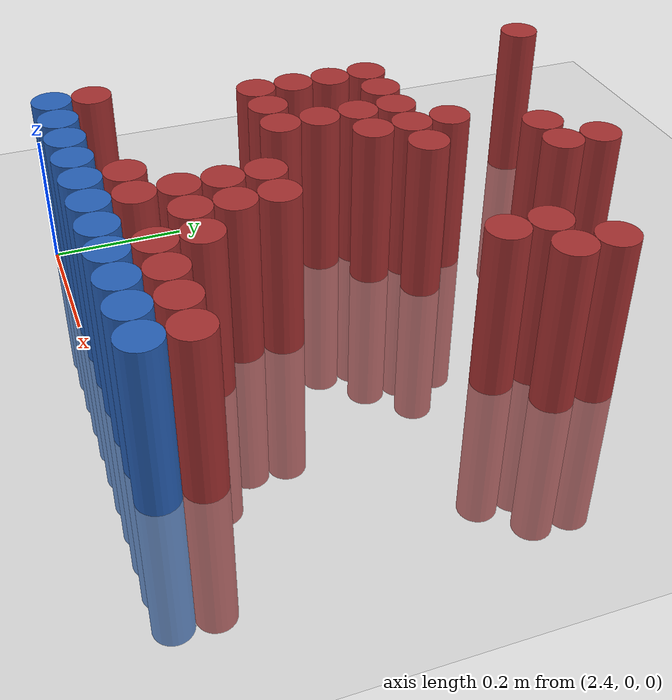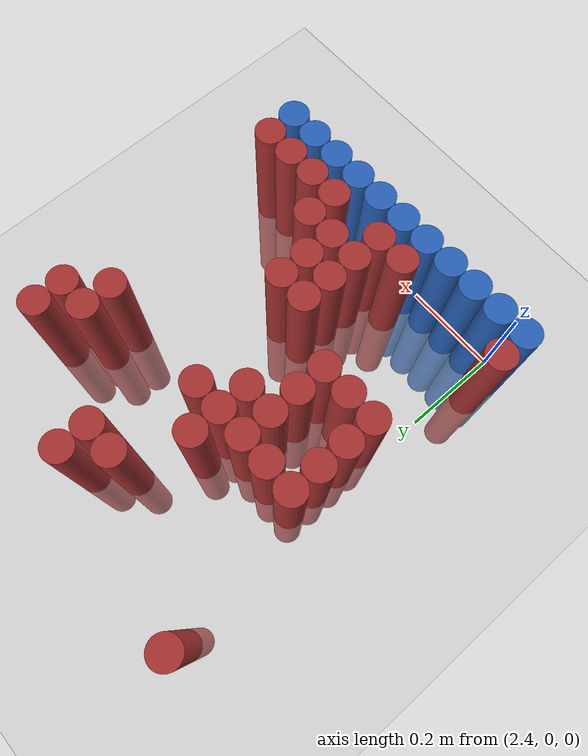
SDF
<sdf version="1.6">
 <world name="default">
  <model name="ground_plane">
   <static>1</static>
   <link name="link">
    <collision name="collision">
     <geometry><plane><normal>0 0 1</normal><size>100 100</size></plane></geometry>
     <surface><friction><ode><mu>100</mu><mu2>50</mu2></ode></friction></surface>
    </collision>
    <visual name="visual">
     <cast_shadows>0</cast_shadows>
     <geometry><plane><normal>0 0 1</normal><size>100 100</size></plane></geometry>
     <material>
      <script><uri>file://media/materials/scripts/gazebo.material</uri><name>Gazebo/Grey</name></script>
     </material>
    </visual>
   </link>
  </model>
  <model name="unit_cylinder_229">
   <static>1</static>
   <pose>2.370000 0.810000 0.000000 0.000000 0.000000 0.000000</pose>
   <link name="link">
    <inertial>
     <mass>1</mass>
     <inertia><ixx>0.145833</ixx><ixy>0</ixy><ixz>0</ixz><iyy>0.145833</iyy><iyz>0</iyz><izz>0.125</izz></inertia>
    </inertial>
    <collision name="collision">
     <geometry><cylinder><radius>0.030000</radius><length>0.5</length></cylinder></geometry>
    </collision>
    <visual name="visual">
     <geometry><cylinder><radius>0.030000</radius><length>0.5</length></cylinder></geometry>
     <material>
      <ambient>0.648000 0.192000 0.192000 1</ambient>
      <diffuse>0.648000 0.192000 0.192000 1</diffuse>
     </material>
     <material>
      <script><name>Gazebo/Grey</name><uri>file://media/materials/scripts/gazebo.material</uri></script>
     </material>
    </visual>
   </link>
  </model>
  <model name="unit_cylinder_234">
   <static>1</static>
   <pose>2.730000 0.750000 0.000000 0.000000 0.000000 0.000000</pose>
   <link name="link">
    <inertial>
     <mass>1</mass>
     <inertia><ixx>0.145833</ixx><ixy>0</ixy><ixz>0</ixz><iyy>0.145833</iyy><iyz>0</iyz><izz>0.125</izz></inertia>
    </inertial>
    <collision name="collision">
     <geometry><cylinder><radius>0.030000</radius><length>0.5</length></cylinder></geometry>
    </collision>
    <visual name="visual">
     <geometry><cylinder><radius>0.030000</radius><length>0.5</length></cylinder></geometry>
     <material>
      <ambient>0.648000 0.192000 0.192000 1</ambient>
      <diffuse>0.648000 0.192000 0.192000 1</diffuse>
     </material>
     <material>
      <script><name>Gazebo/Grey</name><uri>file://media/materials/scripts/gazebo.material</uri></script>
     </material>
    </visual>
   </link>
  </model>
  <model name="unit_cylinder_237">
   <static>1</static>
   <pose>2.670000 0.690000 0.000000 0.000000 0.000000 0.000000</pose>
   <link name="link">
    <inertial>
     <mass>1</mass>
     <inertia><ixx>0.145833</ixx><ixy>0</ixy><ixz>0</ixz><iyy>0.145833</iyy><iyz>0</iyz><izz>0.125</izz></inertia>
    </inertial>
    <collision name="collision">
     <geometry><cylinder><radius>0.030000</radius><length>0.5</length></cylinder></geometry>
    </collision>
    <visual name="visual">
     <geometry><cylinder><radius>0.030000</radius><length>0.5</length></cylinder></geometry>
     <material>
      <ambient>0.648000 0.192000 0.192000 1</ambient>
      <diffuse>0.648000 0.192000 0.192000 1</diffuse>
     </material>
     <material>
      <script><name>Gazebo/Grey</name><uri>file://media/materials/scripts/gazebo.material</uri></script>
     </material>
    </visual>
   </link>
  </model>
  <model name="unit_cylinder_238">
   <static>1</static>
   <pose>2.730000 0.690000 0.000000 0.000000 0.000000 0.000000</pose>
   <link name="link">
    <inertial>
     <mass>1</mass>
     <inertia><ixx>0.145833</ixx><ixy>0</ixy><ixz>0</ixz><iyy>0.145833</iyy><iyz>0</iyz><izz>0.125</izz></inertia>
    </inertial>
    <collision name="collision">
     <geometry><cylinder><radius>0.030000</radius><length>0.5</length></cylinder></geometry>
    </collision>
    <visual name="visual">
     <geometry><cylinder><radius>0.030000</radius><length>0.5</length></cylinder></geometry>
     <material>
      <ambient>0.648000 0.192000 0.192000 1</ambient>
      <diffuse>0.648000 0.192000 0.192000 1</diffuse>
     </material>
     <material>
      <script><name>Gazebo/Grey</name><uri>file://media/materials/scripts/gazebo.material</uri></script>
     </material>
    </visual>
   </link>
  </model>
  <model name="unit_cylinder_241">
   <static>1</static>
   <pose>2.970000 0.630000 0.000000 0.000000 0.000000 0.000000</pose>
   <link name="link">
    <inertial>
     <mass>1</mass>
     <inertia><ixx>0.145833</ixx><ixy>0</ixy><ixz>0</ixz><iyy>0.145833</iyy><iyz>0</iyz><izz>0.125</izz></inertia>
    </inertial>
    <collision name="collision">
     <geometry><cylinder><radius>0.030000</radius><length>0.5</length></cylinder></geometry>
    </collision>
    <visual name="visual">
     <geometry><cylinder><radius>0.030000</radius><length>0.5</length></cylinder></geometry>
     <material>
      <ambient>0.648000 0.192000 0.192000 1</ambient>
      <diffuse>0.648000 0.192000 0.192000 1</diffuse>
     </material>
     <material>
      <script><name>Gazebo/Grey</name><uri>file://media/materials/scripts/gazebo.material</uri></script>
     </material>
    </visual>
   </link>
  </model>
  <model name="unit_cylinder_245">
   <static>1</static>
   <pose>2.610000 0.570000 0.000000 0.000000 0.000000 0.000000</pose>
   <link name="link">
    <inertial>
     <mass>1</mass>
     <inertia><ixx>0.145833</ixx><ixy>0</ixy><ixz>0</ixz><iyy>0.145833</iyy><iyz>0</iyz><izz>0.125</izz></inertia>
    </inertial>
    <collision name="collision">
     <geometry><cylinder><radius>0.030000</radius><length>0.5</length></cylinder></geometry>
    </collision>
    <visual name="visual">
     <geometry><cylinder><radius>0.030000</radius><length>0.5</length></cylinder></geometry>
     <material>
      <ambient>0.648000 0.192000 0.192000 1</ambient>
      <diffuse>0.648000 0.192000 0.192000 1</diffuse>
     </material>
     <material>
      <script><name>Gazebo/Grey</name><uri>file://media/materials/scripts/gazebo.material</uri></script>
     </material>
    </visual>
   </link>
  </model>
  <model name="unit_cylinder_246">
   <static>1</static>
   <pose>2.910000 0.570000 0.000000 0.000000 0.000000 0.000000</pose>
   <link name="link">
    <inertial>
     <mass>1</mass>
     <inertia><ixx>0.145833</ixx><ixy>0</ixy><ixz>0</ixz><iyy>0.145833</iyy><iyz>0</iyz><izz>0.125</izz></inertia>
    </inertial>
    <collision name="collision">
     <geometry><cylinder><radius>0.030000</radius><length>0.5</length></cylinder></geometry>
    </collision>
    <visual name="visual">
     <geometry><cylinder><radius>0.030000</radius><length>0.5</length></cylinder></geometry>
     <material>
      <ambient>0.648000 0.192000 0.192000 1</ambient>
      <diffuse>0.648000 0.192000 0.192000 1</diffuse>
     </material>
     <material>
      <script><name>Gazebo/Grey</name><uri>file://media/materials/scripts/gazebo.material</uri></script>
     </material>
    </visual>
   </link>
  </model>
  <model name="unit_cylinder_247">
   <static>1</static>
   <pose>2.970000 0.570000 0.000000 0.000000 0.000000 0.000000</pose>
   <link name="link">
    <inertial>
     <mass>1</mass>
     <inertia><ixx>0.145833</ixx><ixy>0</ixy><ixz>0</ixz><iyy>0.145833</iyy><iyz>0</iyz><izz>0.125</izz></inertia>
    </inertial>
    <collision name="collision">
     <geometry><cylinder><radius>0.030000</radius><length>0.5</length></cylinder></geometry>
    </collision>
    <visual name="visual">
     <geometry><cylinder><radius>0.030000</radius><length>0.5</length></cylinder></geometry>
     <material>
      <ambient>0.648000 0.192000 0.192000 1</ambient>
      <diffuse>0.648000 0.192000 0.192000 1</diffuse>
     </material>
     <material>
      <script><name>Gazebo/Grey</name><uri>file://media/materials/scripts/gazebo.material</uri></script>
     </material>
    </visual>
   </link>
  </model>
  <model name="unit_cylinder_248">
   <static>1</static>
   <pose>2.430000 0.510000 0.000000 0.000000 0.000000 0.000000</pose>
   <link name="link">
    <inertial>
     <mass>1</mass>
     <inertia><ixx>0.145833</ixx><ixy>0</ixy><ixz>0</ixz><iyy>0.145833</iyy><iyz>0</iyz><izz>0.125</izz></inertia>
    </inertial>
    <collision name="collision">
     <geometry><cylinder><radius>0.030000</radius><length>0.5</length></cylinder></geometry>
    </collision>
    <visual name="visual">
     <geometry><cylinder><radius>0.030000</radius><length>0.5</length></cylinder></geometry>
     <material>
      <ambient>0.648000 0.192000 0.192000 1</ambient>
      <diffuse>0.648000 0.192000 0.192000 1</diffuse>
     </material>
     <material>
      <script><name>Gazebo/Grey</name><uri>file://media/materials/scripts/gazebo.material</uri></script>
     </material>
    </visual>
   </link>
  </model>
  <model name="unit_cylinder_249">
   <static>1</static>
   <pose>2.490000 0.510000 0.000000 0.000000 0.000000 0.000000</pose>
   <link name="link">
    <inertial>
     <mass>1</mass>
     <inertia><ixx>0.145833</ixx><ixy>0</ixy><ixz>0</ixz><iyy>0.145833</iyy><iyz>0</iyz><izz>0.125</izz></inertia>
    </inertial>
    <collision name="collision">
     <geometry><cylinder><radius>0.030000</radius><length>0.5</length></cylinder></geometry>
    </collision>
    <visual name="visual">
     <geometry><cylinder><radius>0.030000</radius><length>0.5</length></cylinder></geometry>
     <material>
      <ambient>0.648000 0.192000 0.192000 1</ambient>
      <diffuse>0.648000 0.192000 0.192000 1</diffuse>
     </material>
     <material>
      <script><name>Gazebo/Grey</name><uri>file://media/materials/scripts/gazebo.material</uri></script>
     </material>
    </visual>
   </link>
  </model>
  <model name="unit_cylinder_250">
   <static>1</static>
   <pose>2.550000 0.510000 0.000000 0.000000 0.000000 0.000000</pose>
   <link name="link">
    <inertial>
     <mass>1</mass>
     <inertia><ixx>0.145833</ixx><ixy>0</ixy><ixz>0</ixz><iyy>0.145833</iyy><iyz>0</iyz><izz>0.125</izz></inertia>
    </inertial>
    <collision name="collision">
     <geometry><cylinder><radius>0.030000</radius><length>0.5</length></cylinder></geometry>
    </collision>
    <visual name="visual">
     <geometry><cylinder><radius>0.030000</radius><length>0.5</length></cylinder></geometry>
     <material>
      <ambient>0.648000 0.192000 0.192000 1</ambient>
      <diffuse>0.648000 0.192000 0.192000 1</diffuse>
     </material>
     <material>
      <script><name>Gazebo/Grey</name><uri>file://media/materials/scripts/gazebo.material</uri></script>
     </material>
    </visual>
   </link>
  </model>
  <model name="unit_cylinder_251">
   <static>1</static>
   <pose>2.610000 0.510000 0.000000 0.000000 0.000000 0.000000</pose>
   <link name="link">
    <inertial>
     <mass>1</mass>
     <inertia><ixx>0.145833</ixx><ixy>0</ixy><ixz>0</ixz><iyy>0.145833</iyy><iyz>0</iyz><izz>0.125</izz></inertia>
    </inertial>
    <collision name="collision">
     <geometry><cylinder><radius>0.030000</radius><length>0.5</length></cylinder></geometry>
    </collision>
    <visual name="visual">
     <geometry><cylinder><radius>0.030000</radius><length>0.5</length></cylinder></geometry>
     <material>
      <ambient>0.648000 0.192000 0.192000 1</ambient>
      <diffuse>0.648000 0.192000 0.192000 1</diffuse>
     </material>
     <material>
      <script><name>Gazebo/Grey</name><uri>file://media/materials/scripts/gazebo.material</uri></script>
     </material>
    </visual>
   </link>
  </model>
  <model name="unit_cylinder_252">
   <static>1</static>
   <pose>2.670000 0.510000 0.000000 0.000000 0.000000 0.000000</pose>
   <link name="link">
    <inertial>
     <mass>1</mass>
     <inertia><ixx>0.145833</ixx><ixy>0</ixy><ixz>0</ixz><iyy>0.145833</iyy><iyz>0</iyz><izz>0.125</izz></inertia>
    </inertial>
    <collision name="collision">
     <geometry><cylinder><radius>0.030000</radius><length>0.5</length></cylinder></geometry>
    </collision>
    <visual name="visual">
     <geometry><cylinder><radius>0.030000</radius><length>0.5</length></cylinder></geometry>
     <material>
      <ambient>0.648000 0.192000 0.192000 1</ambient>
      <diffuse>0.648000 0.192000 0.192000 1</diffuse>
     </material>
     <material>
      <script><name>Gazebo/Grey</name><uri>file://media/materials/scripts/gazebo.material</uri></script>
     </material>
    </visual>
   </link>
  </model>
  <model name="unit_cylinder_253">
   <static>1</static>
   <pose>2.910000 0.510000 0.000000 0.000000 0.000000 0.000000</pose>
   <link name="link">
    <inertial>
     <mass>1</mass>
     <inertia><ixx>0.145833</ixx><ixy>0</ixy><ixz>0</ixz><iyy>0.145833</iyy><iyz>0</iyz><izz>0.125</izz></inertia>
    </inertial>
    <collision name="collision">
     <geometry><cylinder><radius>0.030000</radius><length>0.5</length></cylinder></geometry>
    </collision>
    <visual name="visual">
     <geometry><cylinder><radius>0.030000</radius><length>0.5</length></cylinder></geometry>
     <material>
      <ambient>0.648000 0.192000 0.192000 1</ambient>
      <diffuse>0.648000 0.192000 0.192000 1</diffuse>
     </material>
     <material>
      <script><name>Gazebo/Grey</name><uri>file://media/materials/scripts/gazebo.material</uri></script>
     </material>
    </visual>
   </link>
  </model>
  <model name="unit_cylinder_255">
   <static>1</static>
   <pose>2.430000 0.450000 0.000000 0.000000 0.000000 0.000000</pose>
   <link name="link">
    <inertial>
     <mass>1</mass>
     <inertia><ixx>0.145833</ixx><ixy>0</ixy><ixz>0</ixz><iyy>0.145833</iyy><iyz>0</iyz><izz>0.125</izz></inertia>
    </inertial>
    <collision name="collision">
     <geometry><cylinder><radius>0.030000</radius><length>0.5</length></cylinder></geometry>
    </collision>
    <visual name="visual">
     <geometry><cylinder><radius>0.030000</radius><length>0.5</length></cylinder></geometry>
     <material>
      <ambient>0.648000 0.192000 0.192000 1</ambient>
      <diffuse>0.648000 0.192000 0.192000 1</diffuse>
     </material>
     <material>
      <script><name>Gazebo/Grey</name><uri>file://media/materials/scripts/gazebo.material</uri></script>
     </material>
    </visual>
   </link>
  </model>
  <model name="unit_cylinder_256">
   <static>1</static>
   <pose>2.550000 0.450000 0.000000 0.000000 0.000000 0.000000</pose>
   <link name="link">
    <inertial>
     <mass>1</mass>
     <inertia><ixx>0.145833</ixx><ixy>0</ixy><ixz>0</ixz><iyy>0.145833</iyy><iyz>0</iyz><izz>0.125</izz></inertia>
    </inertial>
    <collision name="collision">
     <geometry><cylinder><radius>0.030000</radius><length>0.5</length></cylinder></geometry>
    </collision>
    <visual name="visual">
     <geometry><cylinder><radius>0.030000</radius><length>0.5</length></cylinder></geometry>
     <material>
      <ambient>0.648000 0.192000 0.192000 1</ambient>
      <diffuse>0.648000 0.192000 0.192000 1</diffuse>
     </material>
     <material>
      <script><name>Gazebo/Grey</name><uri>file://media/materials/scripts/gazebo.material</uri></script>
     </material>
    </visual>
   </link>
  </model>
  <model name="unit_cylinder_257">
   <static>1</static>
   <pose>2.610000 0.450000 0.000000 0.000000 0.000000 0.000000</pose>
   <link name="link">
    <inertial>
     <mass>1</mass>
     <inertia><ixx>0.145833</ixx><ixy>0</ixy><ixz>0</ixz><iyy>0.145833</iyy><iyz>0</iyz><izz>0.125</izz></inertia>
    </inertial>
    <collision name="collision">
     <geometry><cylinder><radius>0.030000</radius><length>0.5</length></cylinder></geometry>
    </collision>
    <visual name="visual">
     <geometry><cylinder><radius>0.030000</radius><length>0.5</length></cylinder></geometry>
     <material>
      <ambient>0.648000 0.192000 0.192000 1</ambient>
      <diffuse>0.648000 0.192000 0.192000 1</diffuse>
     </material>
     <material>
      <script><name>Gazebo/Grey</name><uri>file://media/materials/scripts/gazebo.material</uri></script>
     </material>
    </visual>
   </link>
  </model>
  <model name="unit_cylinder_260">
   <static>1</static>
   <pose>2.430000 0.390000 0.000000 0.000000 0.000000 0.000000</pose>
   <link name="link">
    <inertial>
     <mass>1</mass>
     <inertia><ixx>0.145833</ixx><ixy>0</ixy><ixz>0</ixz><iyy>0.145833</iyy><iyz>0</iyz><izz>0.125</izz></inertia>
    </inertial>
    <collision name="collision">
     <geometry><cylinder><radius>0.030000</radius><length>0.5</length></cylinder></geometry>
    </collision>
    <visual name="visual">
     <geometry><cylinder><radius>0.030000</radius><length>0.5</length></cylinder></geometry>
     <material>
      <ambient>0.648000 0.192000 0.192000 1</ambient>
      <diffuse>0.648000 0.192000 0.192000 1</diffuse>
     </material>
     <material>
      <script><name>Gazebo/Grey</name><uri>file://media/materials/scripts/gazebo.material</uri></script>
     </material>
    </visual>
   </link>
  </model>
  <model name="unit_cylinder_261">
   <static>1</static>
   <pose>2.550000 0.390000 0.000000 0.000000 0.000000 0.000000</pose>
   <link name="link">
    <inertial>
     <mass>1</mass>
     <inertia><ixx>0.145833</ixx><ixy>0</ixy><ixz>0</ixz><iyy>0.145833</iyy><iyz>0</iyz><izz>0.125</izz></inertia>
    </inertial>
    <collision name="collision">
     <geometry><cylinder><radius>0.030000</radius><length>0.5</length></cylinder></geometry>
    </collision>
    <visual name="visual">
     <geometry><cylinder><radius>0.030000</radius><length>0.5</length></cylinder></geometry>
     <material>
      <ambient>0.648000 0.192000 0.192000 1</ambient>
      <diffuse>0.648000 0.192000 0.192000 1</diffuse>
     </material>
     <material>
      <script><name>Gazebo/Grey</name><uri>file://media/materials/scripts/gazebo.material</uri></script>
     </material>
    </visual>
   </link>
  </model>
  <model name="unit_cylinder_263">
   <static>1</static>
   <pose>2.430000 0.330000 0.000000 0.000000 0.000000 0.000000</pose>
   <link name="link">
    <inertial>
     <mass>1</mass>
     <inertia><ixx>0.145833</ixx><ixy>0</ixy><ixz>0</ixz><iyy>0.145833</iyy><iyz>0</iyz><izz>0.125</izz></inertia>
    </inertial>
    <collision name="collision">
     <geometry><cylinder><radius>0.030000</radius><length>0.5</length></cylinder></geometry>
    </collision>
    <visual name="visual">
     <geometry><cylinder><radius>0.030000</radius><length>0.5</length></cylinder></geometry>
     <material>
      <ambient>0.648000 0.192000 0.192000 1</ambient>
      <diffuse>0.648000 0.192000 0.192000 1</diffuse>
     </material>
     <material>
      <script><name>Gazebo/Grey</name><uri>file://media/materials/scripts/gazebo.material</uri></script>
     </material>
    </visual>
   </link>
  </model>
  <model name="unit_cylinder_264">
   <static>1</static>
   <pose>2.490000 0.330000 0.000000 0.000000 0.000000 0.000000</pose>
   <link name="link">
    <inertial>
     <mass>1</mass>
     <inertia><ixx>0.145833</ixx><ixy>0</ixy><ixz>0</ixz><iyy>0.145833</iyy><iyz>0</iyz><izz>0.125</izz></inertia>
    </inertial>
    <collision name="collision">
     <geometry><cylinder><radius>0.030000</radius><length>0.5</length></cylinder></geometry>
    </collision>
    <visual name="visual">
     <geometry><cylinder><radius>0.030000</radius><length>0.5</length></cylinder></geometry>
     <material>
      <ambient>0.648000 0.192000 0.192000 1</ambient>
      <diffuse>0.648000 0.192000 0.192000 1</diffuse>
     </material>
     <material>
      <script><name>Gazebo/Grey</name><uri>file://media/materials/scripts/gazebo.material</uri></script>
     </material>
    </visual>
   </link>
  </model>
  <model name="unit_cylinder_265">
   <static>1</static>
   <pose>2.550000 0.330000 0.000000 0.000000 0.000000 0.000000</pose>
   <link name="link">
    <inertial>
     <mass>1</mass>
     <inertia><ixx>0.145833</ixx><ixy>0</ixy><ixz>0</ixz><iyy>0.145833</iyy><iyz>0</iyz><izz>0.125</izz></inertia>
    </inertial>
    <collision name="collision">
     <geometry><cylinder><radius>0.030000</radius><length>0.5</length></cylinder></geometry>
    </collision>
    <visual name="visual">
     <geometry><cylinder><radius>0.030000</radius><length>0.5</length></cylinder></geometry>
     <material>
      <ambient>0.648000 0.192000 0.192000 1</ambient>
      <diffuse>0.648000 0.192000 0.192000 1</diffuse>
     </material>
     <material>
      <script><name>Gazebo/Grey</name><uri>file://media/materials/scripts/gazebo.material</uri></script>
     </material>
    </visual>
   </link>
  </model>
  <model name="unit_cylinder_266">
   <static>1</static>
   <pose>2.670000 0.270000 0.000000 0.000000 0.000000 0.000000</pose>
   <link name="link">
    <inertial>
     <mass>1</mass>
     <inertia><ixx>0.145833</ixx><ixy>0</ixy><ixz>0</ixz><iyy>0.145833</iyy><iyz>0</iyz><izz>0.125</izz></inertia>
    </inertial>
    <collision name="collision">
     <geometry><cylinder><radius>0.030000</radius><length>0.5</length></cylinder></geometry>
    </collision>
    <visual name="visual">
     <geometry><cylinder><radius>0.030000</radius><length>0.5</length></cylinder></geometry>
     <material>
      <ambient>0.648000 0.192000 0.192000 1</ambient>
      <diffuse>0.648000 0.192000 0.192000 1</diffuse>
     </material>
     <material>
      <script><name>Gazebo/Grey</name><uri>file://media/materials/scripts/gazebo.material</uri></script>
     </material>
    </visual>
   </link>
  </model>
  <model name="unit_cylinder_267">
   <static>1</static>
   <pose>2.730000 0.270000 0.000000 0.000000 0.000000 0.000000</pose>
   <link name="link">
    <inertial>
     <mass>1</mass>
     <inertia><ixx>0.145833</ixx><ixy>0</ixy><ixz>0</ixz><iyy>0.145833</iyy><iyz>0</iyz><izz>0.125</izz></inertia>
    </inertial>
    <collision name="collision">
     <geometry><cylinder><radius>0.030000</radius><length>0.5</length></cylinder></geometry>
    </collision>
    <visual name="visual">
     <geometry><cylinder><radius>0.030000</radius><length>0.5</length></cylinder></geometry>
     <material>
      <ambient>0.648000 0.192000 0.192000 1</ambient>
      <diffuse>0.648000 0.192000 0.192000 1</diffuse>
     </material>
     <material>
      <script><name>Gazebo/Grey</name><uri>file://media/materials/scripts/gazebo.material</uri></script>
     </material>
    </visual>
   </link>
  </model>
  <model name="unit_cylinder_274">
   <static>1</static>
   <pose>2.670000 0.210000 0.000000 0.000000 0.000000 0.000000</pose>
   <link name="link">
    <inertial>
     <mass>1</mass>
     <inertia><ixx>0.145833</ixx><ixy>0</ixy><ixz>0</ixz><iyy>0.145833</iyy><iyz>0</iyz><izz>0.125</izz></inertia>
    </inertial>
    <collision name="collision">
     <geometry><cylinder><radius>0.030000</radius><length>0.5</length></cylinder></geometry>
    </collision>
    <visual name="visual">
     <geometry><cylinder><radius>0.030000</radius><length>0.5</length></cylinder></geometry>
     <material>
      <ambient>0.648000 0.192000 0.192000 1</ambient>
      <diffuse>0.648000 0.192000 0.192000 1</diffuse>
     </material>
     <material>
      <script><name>Gazebo/Grey</name><uri>file://media/materials/scripts/gazebo.material</uri></script>
     </material>
    </visual>
   </link>
  </model>
  <model name="unit_cylinder_275">
   <static>1</static>
   <pose>2.730000 0.210000 0.000000 0.000000 0.000000 0.000000</pose>
   <link name="link">
    <inertial>
     <mass>1</mass>
     <inertia><ixx>0.145833</ixx><ixy>0</ixy><ixz>0</ixz><iyy>0.145833</iyy><iyz>0</iyz><izz>0.125</izz></inertia>
    </inertial>
    <collision name="collision">
     <geometry><cylinder><radius>0.030000</radius><length>0.5</length></cylinder></geometry>
    </collision>
    <visual name="visual">
     <geometry><cylinder><radius>0.030000</radius><length>0.5</length></cylinder></geometry>
     <material>
      <ambient>0.648000 0.192000 0.192000 1</ambient>
      <diffuse>0.648000 0.192000 0.192000 1</diffuse>
     </material>
     <material>
      <script><name>Gazebo/Grey</name><uri>file://media/materials/scripts/gazebo.material</uri></script>
     </material>
    </visual>
   </link>
  </model>
  <model name="unit_cylinder_279">
   <static>1</static>
   <pose>2.670000 0.150000 0.000000 0.000000 0.000000 0.000000</pose>
   <link name="link">
    <inertial>
     <mass>1</mass>
     <inertia><ixx>0.145833</ixx><ixy>0</ixy><ixz>0</ixz><iyy>0.145833</iyy><iyz>0</iyz><izz>0.125</izz></inertia>
    </inertial>
    <collision name="collision">
     <geometry><cylinder><radius>0.030000</radius><length>0.5</length></cylinder></geometry>
    </collision>
    <visual name="visual">
     <geometry><cylinder><radius>0.030000</radius><length>0.5</length></cylinder></geometry>
     <material>
      <ambient>0.648000 0.192000 0.192000 1</ambient>
      <diffuse>0.648000 0.192000 0.192000 1</diffuse>
     </material>
     <material>
      <script><name>Gazebo/Grey</name><uri>file://media/materials/scripts/gazebo.material</uri></script>
     </material>
    </visual>
   </link>
  </model>
  <model name="unit_cylinder_280">
   <static>1</static>
   <pose>2.730000 0.150000 0.000000 0.000000 0.000000 0.000000</pose>
   <link name="link">
    <inertial>
     <mass>1</mass>
     <inertia><ixx>0.145833</ixx><ixy>0</ixy><ixz>0</ixz><iyy>0.145833</iyy><iyz>0</iyz><izz>0.125</izz></inertia>
    </inertial>
    <collision name="collision">
     <geometry><cylinder><radius>0.030000</radius><length>0.5</length></cylinder></geometry>
    </collision>
    <visual name="visual">
     <geometry><cylinder><radius>0.030000</radius><length>0.5</length></cylinder></geometry>
     <material>
      <ambient>0.648000 0.192000 0.192000 1</ambient>
      <diffuse>0.648000 0.192000 0.192000 1</diffuse>
     </material>
     <material>
      <script><name>Gazebo/Grey</name><uri>file://media/materials/scripts/gazebo.material</uri></script>
     </material>
    </visual>
   </link>
  </model>
  <model name="unit_cylinder_281">
   <static>1</static>
   <pose>2.790000 0.150000 0.000000 0.000000 0.000000 0.000000</pose>
   <link name="link">
    <inertial>
     <mass>1</mass>
     <inertia><ixx>0.145833</ixx><ixy>0</ixy><ixz>0</ixz><iyy>0.145833</iyy><iyz>0</iyz><izz>0.125</izz></inertia>
    </inertial>
    <collision name="collision">
     <geometry><cylinder><radius>0.030000</radius><length>0.5</length></cylinder></geometry>
    </collision>
    <visual name="visual">
     <geometry><cylinder><radius>0.030000</radius><length>0.5</length></cylinder></geometry>
     <material>
      <ambient>0.648000 0.192000 0.192000 1</ambient>
      <diffuse>0.648000 0.192000 0.192000 1</diffuse>
     </material>
     <material>
      <script><name>Gazebo/Grey</name><uri>file://media/materials/scripts/gazebo.material</uri></script>
     </material>
    </visual>
   </link>
  </model>
  <model name="unit_cylinder_287">
   <static>1</static>
   <pose>2.370000 0.090000 0.000000 0.000000 0.000000 0.000000</pose>
   <link name="link">
    <inertial>
     <mass>1</mass>
     <inertia><ixx>0.145833</ixx><ixy>0</ixy><ixz>0</ixz><iyy>0.145833</iyy><iyz>0</iyz><izz>0.125</izz></inertia>
    </inertial>
    <collision name="collision">
     <geometry><cylinder><radius>0.030000</radius><length>0.5</length></cylinder></geometry>
    </collision>
    <visual name="visual">
     <geometry><cylinder><radius>0.030000</radius><length>0.5</length></cylinder></geometry>
     <material>
      <ambient>0.648000 0.192000 0.192000 1</ambient>
      <diffuse>0.648000 0.192000 0.192000 1</diffuse>
     </material>
     <material>
      <script><name>Gazebo/Grey</name><uri>file://media/materials/scripts/gazebo.material</uri></script>
     </material>
    </visual>
   </link>
  </model>
  <model name="unit_cylinder_288">
   <static>1</static>
   <pose>2.610000 0.090000 0.000000 0.000000 0.000000 0.000000</pose>
   <link name="link">
    <inertial>
     <mass>1</mass>
     <inertia><ixx>0.145833</ixx><ixy>0</ixy><ixz>0</ixz><iyy>0.145833</iyy><iyz>0</iyz><izz>0.125</izz></inertia>
    </inertial>
    <collision name="collision">
     <geometry><cylinder><radius>0.030000</radius><length>0.5</length></cylinder></geometry>
    </collision>
    <visual name="visual">
     <geometry><cylinder><radius>0.030000</radius><length>0.5</length></cylinder></geometry>
     <material>
      <ambient>0.648000 0.192000 0.192000 1</ambient>
      <diffuse>0.648000 0.192000 0.192000 1</diffuse>
     </material>
     <material>
      <script><name>Gazebo/Grey</name><uri>file://media/materials/scripts/gazebo.material</uri></script>
     </material>
    </visual>
   </link>
  </model>
  <model name="unit_cylinder_289">
   <static>1</static>
   <pose>2.670000 0.090000 0.000000 0.000000 0.000000 0.000000</pose>
   <link name="link">
    <inertial>
     <mass>1</mass>
     <inertia><ixx>0.145833</ixx><ixy>0</ixy><ixz>0</ixz><iyy>0.145833</iyy><iyz>0</iyz><izz>0.125</izz></inertia>
    </inertial>
    <collision name="collision">
     <geometry><cylinder><radius>0.030000</radius><length>0.5</length></cylinder></geometry>
    </collision>
    <visual name="visual">
     <geometry><cylinder><radius>0.030000</radius><length>0.5</length></cylinder></geometry>
     <material>
      <ambient>0.648000 0.192000 0.192000 1</ambient>
      <diffuse>0.648000 0.192000 0.192000 1</diffuse>
     </material>
     <material>
      <script><name>Gazebo/Grey</name><uri>file://media/materials/scripts/gazebo.material</uri></script>
     </material>
    </visual>
   </link>
  </model>
  <model name="unit_cylinder_290">
   <static>1</static>
   <pose>2.790000 0.090000 0.000000 0.000000 0.000000 0.000000</pose>
   <link name="link">
    <inertial>
     <mass>1</mass>
     <inertia><ixx>0.145833</ixx><ixy>0</ixy><ixz>0</ixz><iyy>0.145833</iyy><iyz>0</iyz><izz>0.125</izz></inertia>
    </inertial>
    <collision name="collision">
     <geometry><cylinder><radius>0.030000</radius><length>0.5</length></cylinder></geometry>
    </collision>
    <visual name="visual">
     <geometry><cylinder><radius>0.030000</radius><length>0.5</length></cylinder></geometry>
     <material>
      <ambient>0.648000 0.192000 0.192000 1</ambient>
      <diffuse>0.648000 0.192000 0.192000 1</diffuse>
     </material>
     <material>
      <script><name>Gazebo/Grey</name><uri>file://media/materials/scripts/gazebo.material</uri></script>
     </material>
    </visual>
   </link>
  </model>
  <model name="unit_cylinder_291">
   <static>1</static>
   <pose>2.850000 0.090000 0.000000 0.000000 0.000000 0.000000</pose>
   <link name="link">
    <inertial>
     <mass>1</mass>
     <inertia><ixx>0.145833</ixx><ixy>0</ixy><ixz>0</ixz><iyy>0.145833</iyy><iyz>0</iyz><izz>0.125</izz></inertia>
    </inertial>
    <collision name="collision">
     <geometry><cylinder><radius>0.030000</radius><length>0.5</length></cylinder></geometry>
    </collision>
    <visual name="visual">
     <geometry><cylinder><radius>0.030000</radius><length>0.5</length></cylinder></geometry>
     <material>
      <ambient>0.648000 0.192000 0.192000 1</ambient>
      <diffuse>0.648000 0.192000 0.192000 1</diffuse>
     </material>
     <material>
      <script><name>Gazebo/Grey</name><uri>file://media/materials/scripts/gazebo.material</uri></script>
     </material>
    </visual>
   </link>
  </model>
  <model name="unit_cylinder_292">
   <static>1</static>
   <pose>2.910000 0.090000 0.000000 0.000000 0.000000 0.000000</pose>
   <link name="link">
    <inertial>
     <mass>1</mass>
     <inertia><ixx>0.145833</ixx><ixy>0</ixy><ixz>0</ixz><iyy>0.145833</iyy><iyz>0</iyz><izz>0.125</izz></inertia>
    </inertial>
    <collision name="collision">
     <geometry><cylinder><radius>0.030000</radius><length>0.5</length></cylinder></geometry>
    </collision>
    <visual name="visual">
     <geometry><cylinder><radius>0.030000</radius><length>0.5</length></cylinder></geometry>
     <material>
      <ambient>0.648000 0.192000 0.192000 1</ambient>
      <diffuse>0.648000 0.192000 0.192000 1</diffuse>
     </material>
     <material>
      <script><name>Gazebo/Grey</name><uri>file://media/materials/scripts/gazebo.material</uri></script>
     </material>
    </visual>
   </link>
  </model>
  <model name="unit_cylinder_293">
   <static>1</static>
   <pose>2.970000 0.090000 0.000000 0.000000 0.000000 0.000000</pose>
   <link name="link">
    <inertial>
     <mass>1</mass>
     <inertia><ixx>0.145833</ixx><ixy>0</ixy><ixz>0</ixz><iyy>0.145833</iyy><iyz>0</iyz><izz>0.125</izz></inertia>
    </inertial>
    <collision name="collision">
     <geometry><cylinder><radius>0.030000</radius><length>0.5</length></cylinder></geometry>
    </collision>
    <visual name="visual">
     <geometry><cylinder><radius>0.030000</radius><length>0.5</length></cylinder></geometry>
     <material>
      <ambient>0.648000 0.192000 0.192000 1</ambient>
      <diffuse>0.648000 0.192000 0.192000 1</diffuse>
     </material>
     <material>
      <script><name>Gazebo/Grey</name><uri>file://media/materials/scripts/gazebo.material</uri></script>
     </material>
    </visual>
   </link>
  </model>
  <model name="unit_cylinder_305">
   <static>1</static>
   <pose>2.370000 0.030000 0.000000 0.000000 0.000000 0.000000</pose>
   <link name="link">
    <inertial>
     <mass>1</mass>
     <inertia><ixx>0.145833</ixx><ixy>0</ixy><ixz>0</ixz><iyy>0.145833</iyy><iyz>0</iyz><izz>0.125</izz></inertia>
    </inertial>
    <collision name="collision">
     <geometry><cylinder><radius>0.030000</radius><length>0.5</length></cylinder></geometry>
    </collision>
    <visual name="visual">
     <geometry><cylinder><radius>0.030000</radius><length>0.5</length></cylinder></geometry>
     <material>
      <ambient>0.152000 0.379000 0.720000 1</ambient>
      <diffuse>0.152000 0.379000 0.720000 1</diffuse>
     </material>
     <material>
      <script><name>Gazebo/Grey</name><uri>file://media/materials/scripts/gazebo.material</uri></script>
     </material>
    </visual>
   </link>
  </model>
  <model name="unit_cylinder_306">
   <static>1</static>
   <pose>2.430000 0.030000 0.000000 0.000000 0.000000 0.000000</pose>
   <link name="link">
    <inertial>
     <mass>1</mass>
     <inertia><ixx>0.145833</ixx><ixy>0</ixy><ixz>0</ixz><iyy>0.145833</iyy><iyz>0</iyz><izz>0.125</izz></inertia>
    </inertial>
    <collision name="collision">
     <geometry><cylinder><radius>0.030000</radius><length>0.5</length></cylinder></geometry>
    </collision>
    <visual name="visual">
     <geometry><cylinder><radius>0.030000</radius><length>0.5</length></cylinder></geometry>
     <material>
      <ambient>0.152000 0.379000 0.720000 1</ambient>
      <diffuse>0.152000 0.379000 0.720000 1</diffuse>
     </material>
     <material>
      <script><name>Gazebo/Grey</name><uri>file://media/materials/scripts/gazebo.material</uri></script>
     </material>
    </visual>
   </link>
  </model>
  <model name="unit_cylinder_307">
   <static>1</static>
   <pose>2.490000 0.030000 0.000000 0.000000 0.000000 0.000000</pose>
   <link name="link">
    <inertial>
     <mass>1</mass>
     <inertia><ixx>0.145833</ixx><ixy>0</ixy><ixz>0</ixz><iyy>0.145833</iyy><iyz>0</iyz><izz>0.125</izz></inertia>
    </inertial>
    <collision name="collision">
     <geometry><cylinder><radius>0.030000</radius><length>0.5</length></cylinder></geometry>
    </collision>
    <visual name="visual">
     <geometry><cylinder><radius>0.030000</radius><length>0.5</length></cylinder></geometry>
     <material>
      <ambient>0.152000 0.379000 0.720000 1</ambient>
      <diffuse>0.152000 0.379000 0.720000 1</diffuse>
     </material>
     <material>
      <script><name>Gazebo/Grey</name><uri>file://media/materials/scripts/gazebo.material</uri></script>
     </material>
    </visual>
   </link>
  </model>
  <model name="unit_cylinder_308">
   <static>1</static>
   <pose>2.550000 0.030000 0.000000 0.000000 0.000000 0.000000</pose>
   <link name="link">
    <inertial>
     <mass>1</mass>
     <inertia><ixx>0.145833</ixx><ixy>0</ixy><ixz>0</ixz><iyy>0.145833</iyy><iyz>0</iyz><izz>0.125</izz></inertia>
    </inertial>
    <collision name="collision">
     <geometry><cylinder><radius>0.030000</radius><length>0.5</length></cylinder></geometry>
    </collision>
    <visual name="visual">
     <geometry><cylinder><radius>0.030000</radius><length>0.5</length></cylinder></geometry>
     <material>
      <ambient>0.152000 0.379000 0.720000 1</ambient>
      <diffuse>0.152000 0.379000 0.720000 1</diffuse>
     </material>
     <material>
      <script><name>Gazebo/Grey</name><uri>file://media/materials/scripts/gazebo.material</uri></script>
     </material>
    </visual>
   </link>
  </model>
  <model name="unit_cylinder_309">
   <static>1</static>
   <pose>2.610000 0.030000 0.000000 0.000000 0.000000 0.000000</pose>
   <link name="link">
    <inertial>
     <mass>1</mass>
     <inertia><ixx>0.145833</ixx><ixy>0</ixy><ixz>0</ixz><iyy>0.145833</iyy><iyz>0</iyz><izz>0.125</izz></inertia>
    </inertial>
    <collision name="collision">
     <geometry><cylinder><radius>0.030000</radius><length>0.5</length></cylinder></geometry>
    </collision>
    <visual name="visual">
     <geometry><cylinder><radius>0.030000</radius><length>0.5</length></cylinder></geometry>
     <material>
      <ambient>0.152000 0.379000 0.720000 1</ambient>
      <diffuse>0.152000 0.379000 0.720000 1</diffuse>
     </material>
     <material>
      <script><name>Gazebo/Grey</name><uri>file://media/materials/scripts/gazebo.material</uri></script>
     </material>
    </visual>
   </link>
  </model>
  <model name="unit_cylinder_310">
   <static>1</static>
   <pose>2.670000 0.030000 0.000000 0.000000 0.000000 0.000000</pose>
   <link name="link">
    <inertial>
     <mass>1</mass>
     <inertia><ixx>0.145833</ixx><ixy>0</ixy><ixz>0</ixz><iyy>0.145833</iyy><iyz>0</iyz><izz>0.125</izz></inertia>
    </inertial>
    <collision name="collision">
     <geometry><cylinder><radius>0.030000</radius><length>0.5</length></cylinder></geometry>
    </collision>
    <visual name="visual">
     <geometry><cylinder><radius>0.030000</radius><length>0.5</length></cylinder></geometry>
     <material>
      <ambient>0.152000 0.379000 0.720000 1</ambient>
      <diffuse>0.152000 0.379000 0.720000 1</diffuse>
     </material>
     <material>
      <script><name>Gazebo/Grey</name><uri>file://media/materials/scripts/gazebo.material</uri></script>
     </material>
    </visual>
   </link>
  </model>
  <model name="unit_cylinder_311">
   <static>1</static>
   <pose>2.730000 0.030000 0.000000 0.000000 0.000000 0.000000</pose>
   <link name="link">
    <inertial>
     <mass>1</mass>
     <inertia><ixx>0.145833</ixx><ixy>0</ixy><ixz>0</ixz><iyy>0.145833</iyy><iyz>0</iyz><izz>0.125</izz></inertia>
    </inertial>
    <collision name="collision">
     <geometry><cylinder><radius>0.030000</radius><length>0.5</length></cylinder></geometry>
    </collision>
    <visual name="visual">
     <geometry><cylinder><radius>0.030000</radius><length>0.5</length></cylinder></geometry>
     <material>
      <ambient>0.152000 0.379000 0.720000 1</ambient>
      <diffuse>0.152000 0.379000 0.720000 1</diffuse>
     </material>
     <material>
      <script><name>Gazebo/Grey</name><uri>file://media/materials/scripts/gazebo.material</uri></script>
     </material>
    </visual>
   </link>
  </model>
  <model name="unit_cylinder_312">
   <static>1</static>
   <pose>2.790000 0.030000 0.000000 0.000000 0.000000 0.000000</pose>
   <link name="link">
    <inertial>
     <mass>1</mass>
     <inertia><ixx>0.145833</ixx><ixy>0</ixy><ixz>0</ixz><iyy>0.145833</iyy><iyz>0</iyz><izz>0.125</izz></inertia>
    </inertial>
    <collision name="collision">
     <geometry><cylinder><radius>0.030000</radius><length>0.5</length></cylinder></geometry>
    </collision>
    <visual name="visual">
     <geometry><cylinder><radius>0.030000</radius><length>0.5</length></cylinder></geometry>
     <material>
      <ambient>0.152000 0.379000 0.720000 1</ambient>
      <diffuse>0.152000 0.379000 0.720000 1</diffuse>
     </material>
     <material>
      <script><name>Gazebo/Grey</name><uri>file://media/materials/scripts/gazebo.material</uri></script>
     </material>
    </visual>
   </link>
  </model>
  <model name="unit_cylinder_313">
   <static>1</static>
   <pose>2.850000 0.030000 0.000000 0.000000 0.000000 0.000000</pose>
   <link name="link">
    <inertial>
     <mass>1</mass>
     <inertia><ixx>0.145833</ixx><ixy>0</ixy><ixz>0</ixz><iyy>0.145833</iyy><iyz>0</iyz><izz>0.125</izz></inertia>
    </inertial>
    <collision name="collision">
     <geometry><cylinder><radius>0.030000</radius><length>0.5</length></cylinder></geometry>
    </collision>
    <visual name="visual">
     <geometry><cylinder><radius>0.030000</radius><length>0.5</length></cylinder></geometry>
     <material>
      <ambient>0.152000 0.379000 0.720000 1</ambient>
      <diffuse>0.152000 0.379000 0.720000 1</diffuse>
     </material>
     <material>
      <script><name>Gazebo/Grey</name><uri>file://media/materials/scripts/gazebo.material</uri></script>
     </material>
    </visual>
   </link>
  </model>
  <model name="unit_cylinder_314">
   <static>1</static>
   <pose>2.910000 0.030000 0.000000 0.000000 0.000000 0.000000</pose>
   <link name="link">
    <inertial>
     <mass>1</mass>
     <inertia><ixx>0.145833</ixx><ixy>0</ixy><ixz>0</ixz><iyy>0.145833</iyy><iyz>0</iyz><izz>0.125</izz></inertia>
    </inertial>
    <collision name="collision">
     <geometry><cylinder><radius>0.030000</radius><length>0.5</length></cylinder></geometry>
    </collision>
    <visual name="visual">
     <geometry><cylinder><radius>0.030000</radius><length>0.5</length></cylinder></geometry>
     <material>
      <ambient>0.152000 0.379000 0.720000 1</ambient>
      <diffuse>0.152000 0.379000 0.720000 1</diffuse>
     </material>
     <material>
      <script><name>Gazebo/Grey</name><uri>file://media/materials/scripts/gazebo.material</uri></script>
     </material>
    </visual>
   </link>
  </model>
  <model name="unit_cylinder_315">
   <static>1</static>
   <pose>2.970000 0.030000 0.000000 0.000000 0.000000 0.000000</pose>
   <link name="link">
    <inertial>
     <mass>1</mass>
     <inertia><ixx>0.145833</ixx><ixy>0</ixy><ixz>0</ixz><iyy>0.145833</iyy><iyz>0</iyz><izz>0.125</izz></inertia>
    </inertial>
    <collision name="collision">
     <geometry><cylinder><radius>0.030000</radius><length>0.5</length></cylinder></geometry>
    </collision>
    <visual name="visual">
     <geometry><cylinder><radius>0.030000</radius><length>0.5</length></cylinder></geometry>
     <material>
      <ambient>0.152000 0.379000 0.720000 1</ambient>
      <diffuse>0.152000 0.379000 0.720000 1</diffuse>
     </material>
     <material>
      <script><name>Gazebo/Grey</name><uri>file://media/materials/scripts/gazebo.material</uri></script>
     </material>
    </visual>
   </link>
  </model>
 </world>
</sdf>
